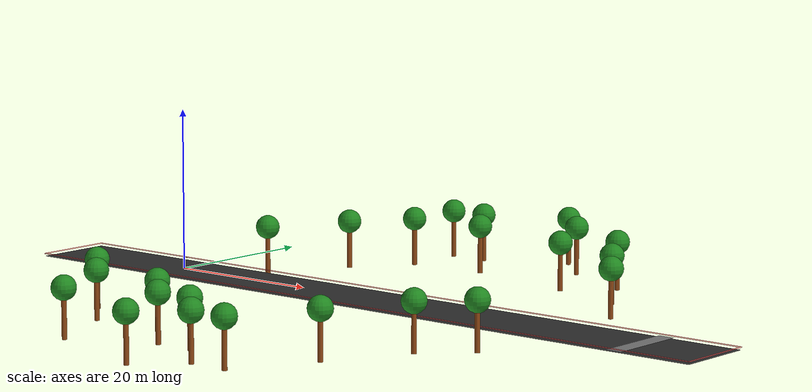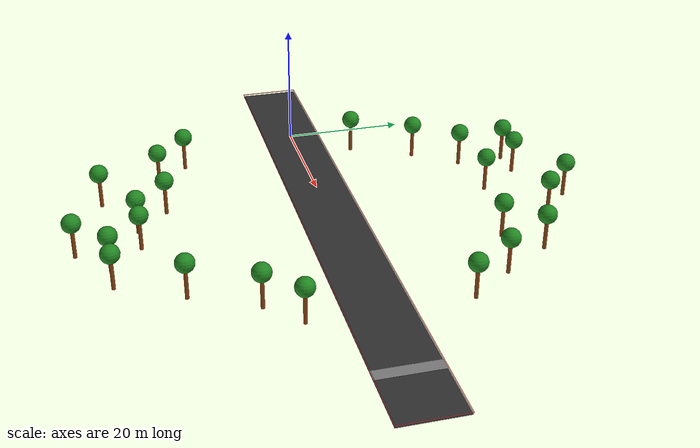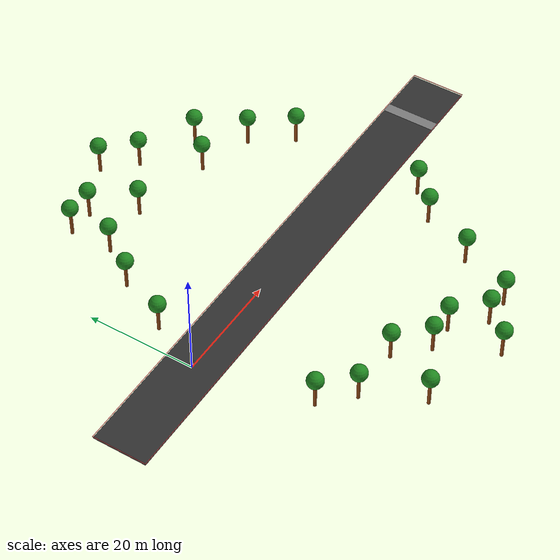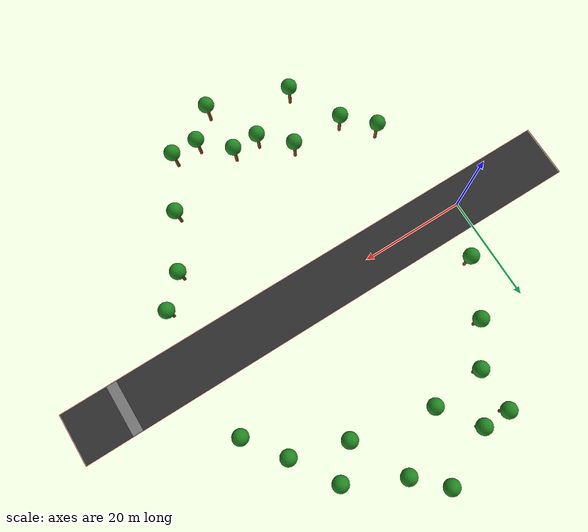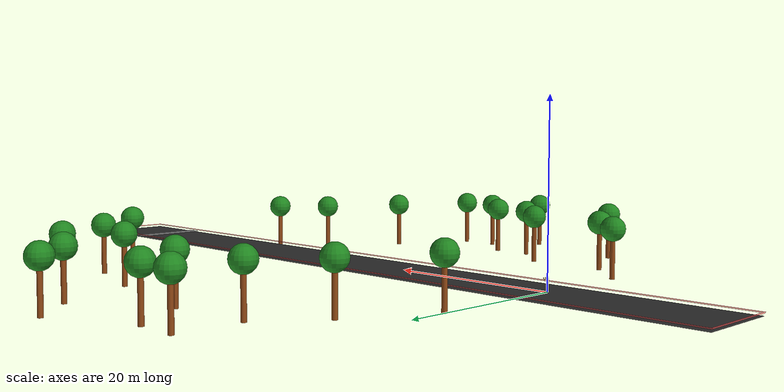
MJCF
<mujoco model="sprint humanoid">
  <option timestep="0.004" iterations="1" ls_iterations="5" solver="Newton">
    <flag eulerdamp="disable"/>
  </option>

  <statistic center="0 0 0.1" extent="10.0" meansize="0.04"/>

  <visual>
    <rgba force="1 0 0 1" haze = "0.71 0.71 0.71 0.51" fog="0.71 0.71 0.71 1"/>
    <global azimuth="140" elevation="-20" offwidth="1920" offheight="1080"/>
    <quality shadowsize="8192" offsamples="8" numslices="32" numstacks="24" numquads="16"/>
  </visual>

  <asset>
    <texture type="skybox" builtin="gradient" rgb1="0.71 0.71 0.71" rgb2="0.71 0.71 0.71" width="800" height="800"/>
    <texture name="grass" type="2d" builtin="checker" width="512" height="512" rgb1="0.133 0.745 0.133" rgb2="0.486 0.988 0.0"/>
    <texture name="trunk" type="cube" builtin="flat" width="128" height="128" rgb1="0.545 0.271 0.075" rgb2="0.545 0.271 0.075"/>
    <texture name="foliage" type="cube" builtin="flat" width="128" height="128" rgb1="0.133 0.545 0.133" rgb2="0.133 0.545 0.133"/>
    <texture name="orange_brown_checkers" type="2d" builtin="checker" width="512" height="512" rgb1="0.988 0.729 0.012" rgb2="0.918 0.714 0.463"/>
    <texture name="black_white_checkers" type="2d" builtin="checker" width="512" height="512" rgb1="0 0 0" rgb2="1 1 1"/>

    <material name="body" rgba=".7 .5 .3 1" specular="0.9" shininess="0.8"/>
    <material name="track" texture="orange_brown_checkers" texrepeat="1 1" texuniform="true" reflectance="0.2"/>
    <material name="grass" texture="grass" texrepeat="1 1" texuniform="true" reflectance="0.2"/>
    <material name="trunk" texture="trunk" texuniform="true"/>
    <material name="foliage" texture="foliage" texuniform="true"/>
    <material name="finish_line" texture="black_white_checkers" texrepeat="2 10"/>
  </asset>

  <default>
    <geom condim="3" contype="0" conaffinity="0"/>
    <joint armature="1" damping="1" limited="true"/>
    <motor ctrllimited="true" ctrlrange="-.4 .4"/>
    <default class="humanoid">
      <geom type="capsule" material="body"/>
    </default>
  </default>

  <worldbody>
    <!-- Building out the track -->
    <geom name="track" type="plane" material="track" pos="30 0 0" size="50 5 0.125" rgba="0.2 0.2 0.2 1.0"/>
    <geom name="side_railing1" type="box" pos="30 5 0.2" size="50.05 0.05 0.06" rgba="0.9 0.3 0.3 0.61"/>
    <geom name="side_railing2" type="box" pos="30 -5 0.2" size="50.05 0.05 0.06" rgba="0.9 0.3 0.3 0.61"/>
    <geom name="back_railing" type="box" pos="-20 0 0.2" size="0.05 5.05 0.06" rgba="0.9 0.3 0.3 0.61"/>
    <geom name="front_railing" type="box" pos="80 0 0.2" size="0.05 5.05 0.06" rgba="0.9 0.3 0.3 0.61"/>
    <geom name="finish_line" type="box" pos="70 0 0.001" size="1 5 0.001" material="finish_line"/>

    <geom name="grass_right" type="plane" material="grass" pos="30 35 0.150" size="50 30 0.125" rgba="0.2 0.2 0.2 1.0"/>
    <geom name="grass_left" type="plane" material="grass" pos="30 -35 0.150" size="50 30 0.125" rgba="0.2 0.2 0.2 1.0"/>
    <geom name="grass_front" type="plane" material="grass" pos="111 0 0.150" size="31 65 0.125" rgba="0.2 0.2 0.2 1.0"/>
    <geom name="grass_back" type="plane" material="grass" pos="-51 0 0.150" size="31 65 0.125" rgba="0.2 0.2 0.2 1.0" />
    <geom name="grass" type="plane" material="grass" pos="0 0 -2.150" size="0 0 0.125" rgba="0.2 0.2 0.2 1.0"/>

    <light name="ambient_light" pos="0 0 5000" dir="0 0 -1" ambient="0.41 0.41 0.41" diffuse="0.3 0.3 0.3" specular="0.1 0.1 0.1" mode="fixed" castshadow="false"/>

    <!-- Humanoid -->
    <body name="humanoid" childclass="humanoid" pos="0 0 1.40">
      <light name="tracking_light" pos="0 0 5" dir="0 0 -1" diffuse="0.2 0.2 0.2" specular="0.8 0.8 0.8" mode="trackcom"/>
      <camera name="cam_default" mode="trackcom" pos="2.907 -4.205 1.395" xyaxes="0.821 0.571 0.000 -0.212 0.304 0.929"/>
      <site name="humanoid" size="0.01" pos="-0 0 -0"/>
      <joint name="humanoid_root" type="free" armature="0" damping="0" limited="false" pos="0 0 0" stiffness="0"/>
      <geom name="humanoid_torso" fromto="0 -.07 0 0 .07 0" size="0.07" type="capsule"/>
      <geom name="humanoid_head" pos="0 0 .19" size=".09" type="sphere"/>
      <geom name="humanoid_uwaist" fromto="-.01 -.06 -.12 -.01 .06 -.12" size="0.06" type="capsule"/>
      <body name="humanoid_lwaist" pos="-.01 0 -0.260" quat="1.000 0 -0.002 0">
        <geom name="humanoid_lwaist" fromto="0 -.06 0 0 .06 0" size="0.06" type="capsule"/>
        <joint name="humanoid_abdomen_z" armature="0.02" axis="0 0 1" damping="5" pos="0 0 0.065" range="-45 45" stiffness="20" type="hinge"/>
        <joint name="humanoid_abdomen_y" armature="0.02" axis="0 1 0" damping="5" pos="0 0 0.065" range="-75 30" stiffness="10" type="hinge"/>
        <body name="humanoid_pelvis" pos="0 0 -0.165" quat="1.000 0 -0.002 0">
          <joint name="humanoid_abdomen_x" armature="0.02" axis="1 0 0" damping="5" pos="0 0 0.1" range="-35 35" stiffness="10" type="hinge"/>
          <geom name="humanoid_butt" fromto="-.02 -.07 0 -.02 .07 0" size="0.09" type="capsule"/>
          <body name="humanoid_right_thigh" pos="0 -0.1 -0.04">
            <joint name="humanoid_right_hip_x" armature="0.01" axis="1 0 0" damping="5" pos="0 0 0" range="-25 5" stiffness="10" type="hinge"/>
            <joint name="humanoid_right_hip_z" armature="0.01" axis="0 0 1" damping="5" pos="0 0 0" range="-60 35" stiffness="10" type="hinge"/>
            <joint name="humanoid_right_hip_y" armature="0.0080" axis="0 1 0" damping="5" pos="0 0 0" range="-110 20" stiffness="20" type="hinge"/>
            <geom name="humanoid_right_thigh" fromto="0 0 0 0 0.01 -.34" size="0.06" type="capsule"/>
            <body name="humanoid_right_shin" pos="0 0.01 -0.403">
              <joint name="humanoid_right_knee" armature="0.0060" axis="0 -1 0" pos="0 0 .02" range="-160 -2" type="hinge"/>
              <geom name="humanoid_right_shin" fromto="0 0 0 0 0 -.3" size="0.049" type="capsule"/>
              <body name="humanoid_right_foot" pos="0 0 -0.45">
                <geom name="humanoid_right_foot" pos="0 0 0.1" size="0.075" type="sphere"/>
              </body>
            </body>
          </body>
          <body name="humanoid_left_thigh" pos="0 0.1 -0.04">
            <joint name="humanoid_left_hip_x" armature="0.01" axis="-1 0 0" damping="5" pos="0 0 0" range="-25 5" stiffness="10" type="hinge"/>
            <joint name="humanoid_left_hip_z" armature="0.01" axis="0 0 -1" damping="5" pos="0 0 0" range="-60 35" stiffness="10" type="hinge"/>
            <joint name="humanoid_left_hip_y" armature="0.01" axis="0 1 0" damping="5" pos="0 0 0" range="-110 20" stiffness="20" type="hinge"/>
            <geom name="humanoid_left_thigh" fromto="0 0 0 0 -0.01 -.34" size="0.06" type="capsule"/>
            <body name="humanoid_left_shin" pos="0 -0.01 -0.403">
              <joint name="humanoid_left_knee" armature="0.0060" axis="0 -1 0" pos="0 0 .02" range="-160 -2" stiffness="1" type="hinge"/>
              <geom name="humanoid_left_shin" fromto="0 0 0 0 0 -.3" size="0.049" type="capsule"/>
              <body name="humanoid_left_foot" pos="0 0 -0.45">
                <geom name="humanoid_left_foot" type="sphere" size="0.075" pos="0 0 0.1"/>
              </body>
            </body>
          </body>
        </body>
      </body>
      <body name="humanoid_right_upper_arm" pos="0 -0.17 0.06">
        <joint name="humanoid_right_shoulder1" armature="0.0068" axis="2 1 1" pos="0 0 0" range="-85 60" stiffness="1" type="hinge"/>
        <joint name="humanoid_right_shoulder2" armature="0.0051" axis="0 -1 1" pos="0 0 0" range="-85 60" stiffness="1" type="hinge"/>
        <geom name="humanoid_right_uarm" fromto="0 0 0 .16 -.16 -.16" size="0.04 0.16" type="capsule"/>
        <body name="humanoid_right_lower_arm" pos=".18 -.18 -.18">
          <joint name="humanoid_right_elbow" armature="0.0028" axis="0 -1 1" pos="0 0 0" range="-90 50" stiffness="0" type="hinge"/>
          <geom name="humanoid_right_larm" fromto="0.01 0.01 0.01 .17 .17 .17" size="0.031" type="capsule"/>
          <geom name="humanoid_right_hand" pos=".18 .18 .18" size="0.04" type="sphere"/>
        </body>
      </body>
      <body name="humanoid_left_upper_arm" pos="0 0.17 0.06">
        <joint name="humanoid_left_shoulder1" armature="0.0068" axis="2 -1 1" pos="0 0 0" range="-60 85" stiffness="1" type="hinge"/>
        <joint name="humanoid_left_shoulder2" armature="0.0051" axis="0 1 1" pos="0 0 0" range="-60 85" stiffness="1" type="hinge"/>
        <geom name="humanoid_left_uarm" fromto="0 0 0 .16 .16 -.16" size="0.04 0.16" type="capsule"/>
        <body name="humanoid_left_lower_arm" pos=".18 .18 -.18">
          <joint name="humanoid_left_elbow" armature="0.0028" axis="0 -1 -1" pos="0 0 0" range="-90 50" stiffness="0" type="hinge"/>
          <geom name="humanoid_left_larm" fromto="0.01 -0.01 0.01 .17 -.17 .17" size="0.031" type="capsule"/>
          <geom name="humanoid_left_hand" pos=".18 -.18 .18" size="0.04" type="sphere"/>
        </body>
      </body>
    </body>

    <body name="trees">
      <body name="tree1" pos="40 25 0">
        <geom size="0.3 3" pos="0 0 1.5" type="cylinder" material="trunk"/>
        <geom size="1.5" pos="0 0 4.5" material="foliage"/>
      </body>
      <body name="tree2" pos="25 28 0">
        <geom size="0.3 3" pos="0 0 1.5" type="cylinder" material="trunk"/>
        <geom size="1.5" pos="0 0 4.5" material="foliage"/>
      </body>
      <body name="tree3" pos="45 30 0">
        <geom size="0.3 3" pos="0 0 1.5" type="cylinder" material="trunk"/>
        <geom size="1.5" pos="0 0 4.5" material="foliage"/>
      </body>
      <body name="tree4" pos="20 -25 0">
        <geom size="0.3 3" pos="0 0 1.5" type="cylinder" material="trunk"/>
        <geom size="1.5" pos="0 0 4.5" material="foliage"/>
      </body>
      <body name="tree5" pos="30 -30 0">
        <geom size="0.3 3" pos="0 0 1.5" type="cylinder" material="trunk"/>
        <geom size="1.5" pos="0 0 4.5" material="foliage"/>
      </body>
      <body name="tree6" pos="50 22 0">
        <geom size="0.3 3" pos="0 0 1.5" type="cylinder" material="trunk"/>
        <geom size="1.5" pos="0 0 4.5" material="foliage"/>
      </body>
      <body name="tree7" pos="15 27 0">
        <geom size="0.3 3" pos="0 0 1.5" type="cylinder" material="trunk"/>
        <geom size="1.5" pos="0 0 4.5" material="foliage"/>
      </body>
      <body name="tree8" pos="35 35 0">
        <geom size="0.3 3" pos="0 0 1.5" type="cylinder" material="trunk"/>
        <geom size="1.5" pos="0 0 4.5" material="foliage"/>
      </body>
      <body name="tree9" pos="10 20 0">
        <geom size="0.3 3" pos="0 0 1.5" type="cylinder" material="trunk"/>
        <geom size="1.5" pos="0 0 4.5" material="foliage"/>
      </body>
      <body name="tree10" pos="55 15 0">
        <geom size="0.3 3" pos="0 0 1.5" type="cylinder" material="trunk"/>
        <geom size="1.5" pos="0 0 4.5" material="foliage"/>
      </body>
      <body name="tree11" pos="5 -20 0">
        <geom size="0.3 3" pos="0 0 1.5" type="cylinder" material="trunk"/>
        <geom size="1.5" pos="0 0 4.5" material="foliage"/>
      </body>
      <body name="tree12" pos="45 -25 0">
        <geom size="0.3 3" pos="0 0 1.5" type="cylinder" material="trunk"/>
        <geom size="1.5" pos="0 0 4.5" material="foliage"/>
      </body>
      <body name="tree13" pos="25 -30 0">
        <geom size="0.3 3" pos="0 0 1.5" type="cylinder" material="trunk"/>
        <geom size="1.5" pos="0 0 4.5" material="foliage"/>
      </body>
      <body name="tree14" pos="40 -35 0">
        <geom size="0.3 3" pos="0 0 1.5" type="cylinder" material="trunk"/>
        <geom size="1.5" pos="0 0 4.5" material="foliage"/>
      </body>
      <body name="tree15" pos="30 40 0">
        <geom size="0.3 3" pos="0 0 1.5" type="cylinder" material="trunk"/>
        <geom size="1.5" pos="0 0 4.5" material="foliage"/>
      </body>
      <body name="tree16" pos="15 35 0">
        <geom size="0.3 3" pos="0 0 1.5" type="cylinder" material="trunk"/>
        <geom size="1.5" pos="0 0 4.5" material="foliage"/>
      </body>
      <body name="tree17" pos="50 -15 0">
        <geom size="0.3 3" pos="0 0 1.5" type="cylinder" material="trunk"/>
        <geom size="1.5" pos="0 0 4.5" material="foliage"/>
      </body>
      <body name="tree18" pos="10 -25 0">
        <geom size="0.3 3" pos="0 0 1.5" type="cylinder" material="trunk"/>
        <geom size="1.5" pos="0 0 4.5" material="foliage"/>
      </body>
      <body name="tree19" pos="55 -10 0">
        <geom size="0.3 3" pos="0 0 1.5" type="cylinder" material="trunk"/>
        <geom size="1.5" pos="0 0 4.5" material="foliage"/>
      </body>
      <body name="tree20" pos="5 10 0">
        <geom size="0.3 3" pos="0 0 1.5" type="cylinder" material="trunk"/>
        <geom size="1.5" pos="0 0 4.5" material="foliage"/>
      </body>
      <body name="tree21" pos="45 30 0">
        <geom size="0.3 3" pos="0 0 1.5" type="cylinder" material="trunk"/>
        <geom size="1.5" pos="0 0 4.5" material="foliage"/>
      </body>
      <body name="tree22" pos="20 35 0">
        <geom size="0.3 3" pos="0 0 1.5" type="cylinder" material="trunk"/>
        <geom size="1.5" pos="0 0 4.5" material="foliage"/>
      </body>
      <body name="tree23" pos="35 -35 0">
        <geom size="0.3 3" pos="0 0 1.5" type="cylinder" material="trunk"/>
        <geom size="1.5" pos="0 0 4.5" material="foliage"/>
      </body>
      <body name="tree24" pos="30 -40 0">
        <geom size="0.3 3" pos="0 0 1.5" type="cylinder" material="trunk"/>
        <geom size="1.5" pos="0 0 4.5" material="foliage"/>
      </body>
      <body name="tree25" pos="15 -35 0">
        <geom size="0.3 3" pos="0 0 1.5" type="cylinder" material="trunk"/>
        <geom size="1.5" pos="0 0 4.5" material="foliage"/>
      </body>
    </body>

  </worldbody>

  <contact>
    <!-- Floor contacts -->
    <pair geom1="humanoid_left_foot" geom2="track" friction="1 1 0.1 0.1 0.1"/>
    <pair geom1="humanoid_right_foot" geom2="track" friction="1 1 0.1 0.1 0.1"/>
    <pair geom1="humanoid_torso" geom2="track" condim="1"/>

      <!-- Self contacts -->
    <pair geom1="humanoid_right_foot" geom2="humanoid_left_foot" condim="1"/>
    <pair geom1="humanoid_left_foot" geom2="humanoid_left_thigh" condim="1"/>
    <pair geom1="humanoid_left_foot" geom2="humanoid_butt" condim="1"/>
    <pair geom1="humanoid_left_foot" geom2="humanoid_right_shin" condim="1"/>
    <pair geom1="humanoid_left_foot" geom2="humanoid_right_thigh" condim="1"/>
    <pair geom1="humanoid_right_foot" geom2="humanoid_right_thigh" condim="1"/>
    <pair geom1="humanoid_right_foot" geom2="humanoid_butt" condim="1"/>
    <pair geom1="humanoid_right_foot" geom2="humanoid_left_shin" condim="1"/>
    <pair geom1="humanoid_right_foot" geom2="humanoid_left_thigh" condim="1"/>
    <pair geom1="humanoid_left_shin" geom2="humanoid_right_thigh" condim="1"/>
    <pair geom1="humanoid_right_shin" geom2="humanoid_left_thigh" condim="1"/>
  </contact>

  <actuator>
    <motor gear="100" joint="humanoid_abdomen_y" name="humanoid_abdomen_y"/>
    <motor gear="100" joint="humanoid_abdomen_z" name="humanoid_abdomen_z"/>
    <motor gear="100" joint="humanoid_abdomen_x" name="humanoid_abdomen_x"/>
    <motor gear="100" joint="humanoid_right_hip_x" name="humanoid_right_hip_x"/>
    <motor gear="100" joint="humanoid_right_hip_z" name="humanoid_right_hip_z"/>
    <motor gear="300" joint="humanoid_right_hip_y" name="humanoid_right_hip_y"/>
    <motor gear="200" joint="humanoid_right_knee" name="humanoid_right_knee"/>
    <motor gear="100" joint="humanoid_left_hip_x" name="humanoid_left_hip_x"/>
    <motor gear="100" joint="humanoid_left_hip_z" name="humanoid_left_hip_z"/>
    <motor gear="300" joint="humanoid_left_hip_y" name="humanoid_left_hip_y"/>
    <motor gear="200" joint="humanoid_left_knee" name="humanoid_left_knee"/>
    <motor gear="25" joint="humanoid_right_shoulder1" name="humanoid_right_shoulder1"/>
    <motor gear="25" joint="humanoid_right_shoulder2" name="humanoid_right_shoulder2"/>
    <motor gear="25" joint="humanoid_right_elbow" name="humanoid_right_elbow"/>
    <motor gear="25" joint="humanoid_left_shoulder1" name="humanoid_left_shoulder1"/>
    <motor gear="25" joint="humanoid_left_shoulder2" name="humanoid_left_shoulder2"/>
    <motor gear="25" joint="humanoid_left_elbow" name="humanoid_left_elbow"/>
  </actuator>
</mujoco>
